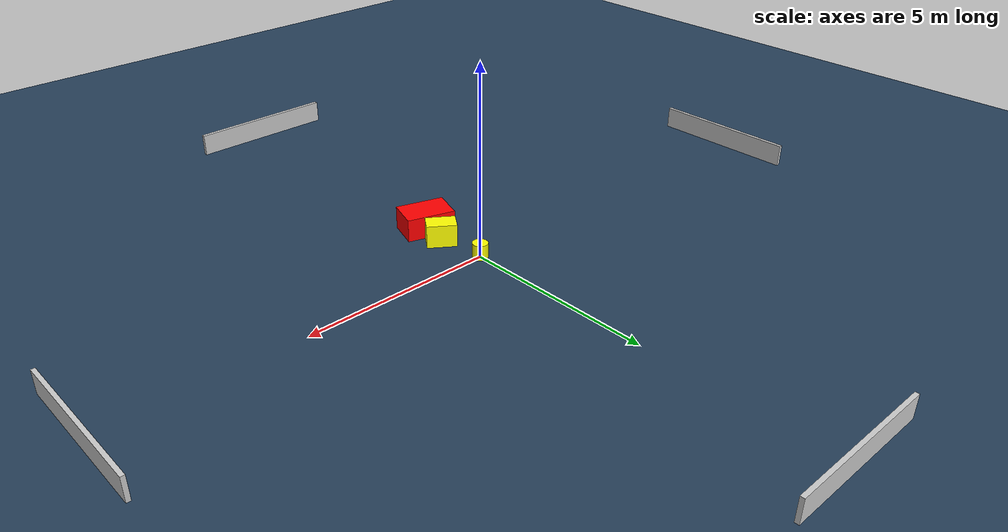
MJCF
<?xml version="1.0" ?>
<mujoco model="generated_environment">
  <option timestep="0.01" integrator="RK4" cone="elliptic"/>
  <default>
    <geom density="1"/>
  </default>
  <asset>
    <texture builtin="gradient" height="3072" name="skybox" rgb1="0.3 0.5 0.7" rgb2="0 0 0" type="skybox" width="512"/>
    <texture builtin="checker" height="300" name="groundplane" rgb1="0.2 0.3 0.4" rgb2="0.1 0.2 0.3" type="2d" width="300"/>
    <material name="groundplane" reflectance="0.2" texrepeat="5 5" texture="groundplane"/>
  </asset>
  <worldbody>
    <light dir="0 0 -1" directional="true" pos="0 0 1.5"/>
    <geom condim="3" friction="0.5 0.005 0.001" material="groundplane" name="floor" pos="0 0 0" size="0 0 0.05" type="plane"/>
    <body name="walls">
      <geom name="wall_1" condim="4" pos="-10.0 0.0 0.3" rgba="0.800000011920929 0.800000011920929 0.800000011920929 1.0" size="0.05 2.0 0.3" type="box"/>
      <geom name="wall_2" condim="4" pos="10.0 0.0 0.3" rgba="0.800000011920929 0.800000011920929 0.800000011920929 1.0" size="0.05 2.0 0.3" type="box"/>
      <geom name="wall_3" condim="4" pos="0.0 -10.0 0.3" rgba="0.800000011920929 0.800000011920929 0.800000011920929 1.0" size="2.0 0.05 0.3" type="box"/>
      <geom name="wall_4" condim="4" pos="0.0 10.0 0.3" rgba="0.800000011920929 0.800000011920929 0.800000011920929 1.0" size="2.0 0.05 0.3" type="box"/>
    </body>
    <body name="robot">
      <joint name="joint_x" type="slide" pos="0 0 0" axis="1 0 0"/>
      <joint name="joint_y" type="slide" pos="0 0 0" axis="0 1 0"/>
      <geom name="robot" type="cylinder" pos="0.0 0.0 0.2" size="0.2 0.2 0.0" mass="5.0" friction="1.0 0.005 0.0001" condim="4" rgba="1.0 1.0 0.0 1.0"/>
    </body>
    <body name="obstacle_1_movable">
      <geom name="obstacle_1_movable" condim="4" pos="0.24009222596098415 -1.1884438024686872 0.3" euler="0 0 235.18576388410708" friction="0.0 0.005 0.001" rgba="1.0 1.0 0.0 1.0" size="0.24688105879640826 0.38323158510070743 0.3" type="box" mass="0.1"/>
      <joint type="free"/>
    </body>
    <body name="obstacle_2_static">
      <geom name="obstacle_2_static" condim="4" pos="0.10089684066161206 -1.9661389945249141 0.3" euler="0 0 72.60626773488701" friction="0.0 0.005 0.001" rgba="1.0 0.0 0.0 1.0" size="0.4185553966067598 0.6361950543819361 0.3" type="box"/>
    </body>
  </worldbody>
  <actuator>
    <motor name="actuator_x" joint="joint_x" gear="1" ctrlrange="-1 1"/>
    <motor name="actuator_y" joint="joint_y" gear="1" ctrlrange="-1 1"/>
  </actuator>
</mujoco>
